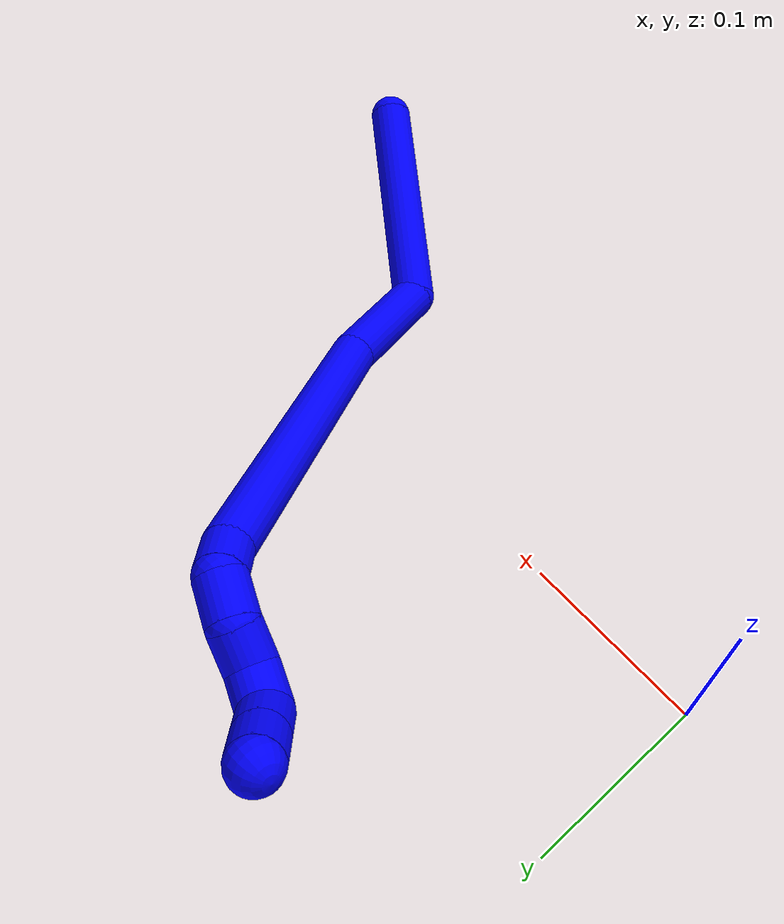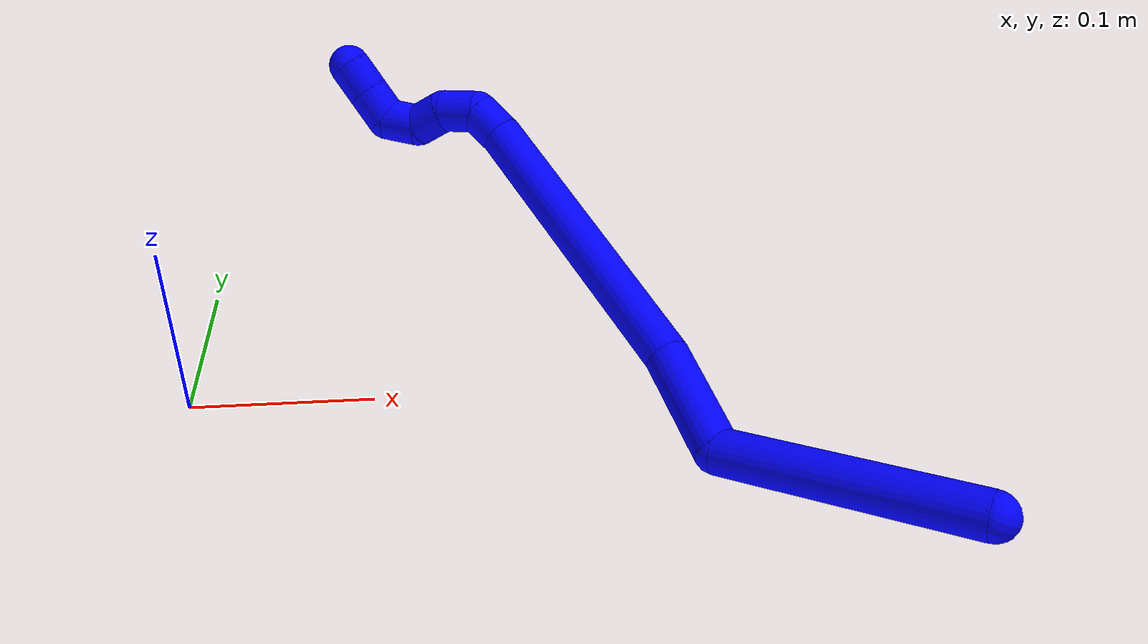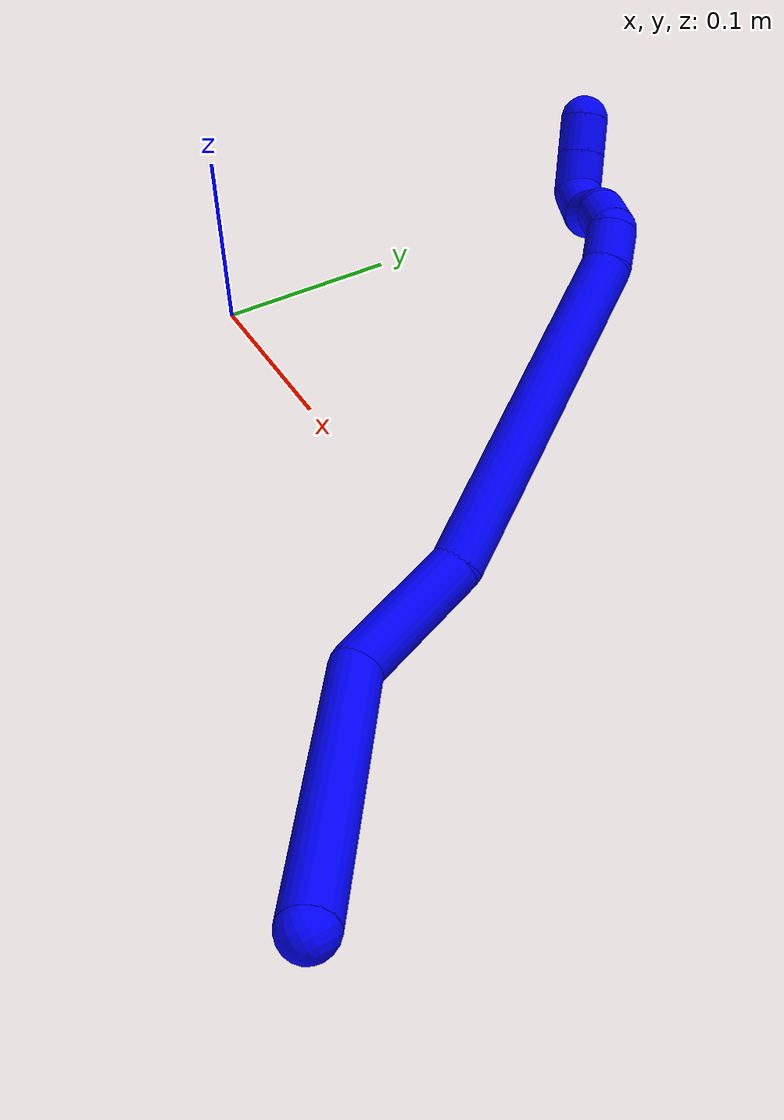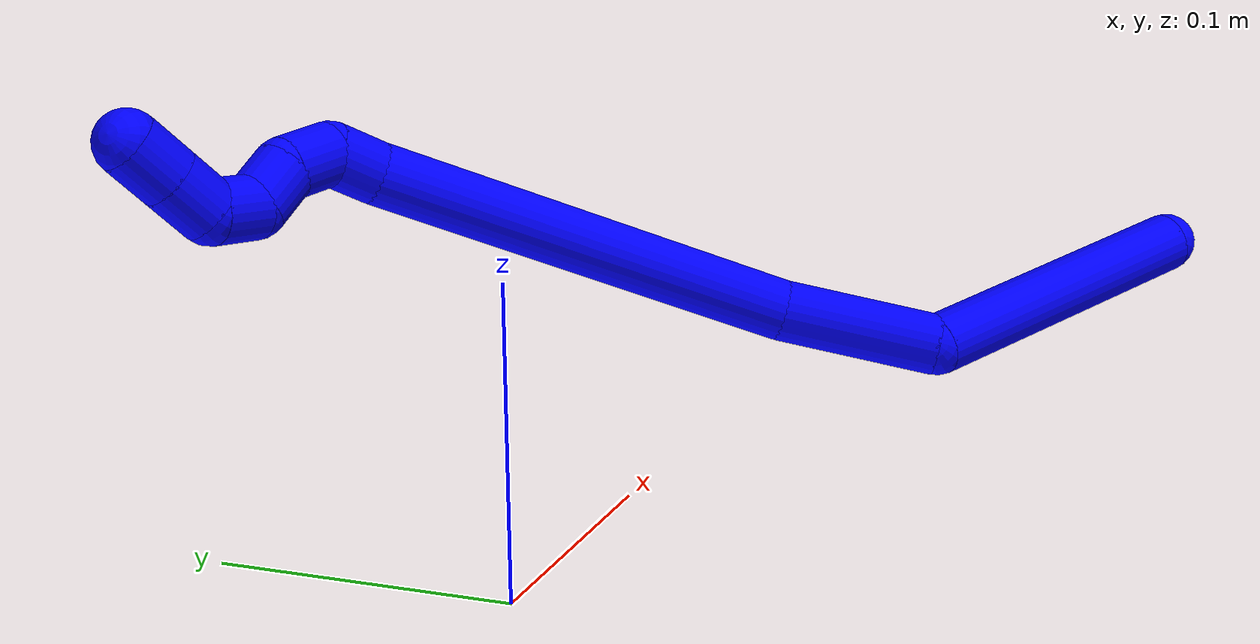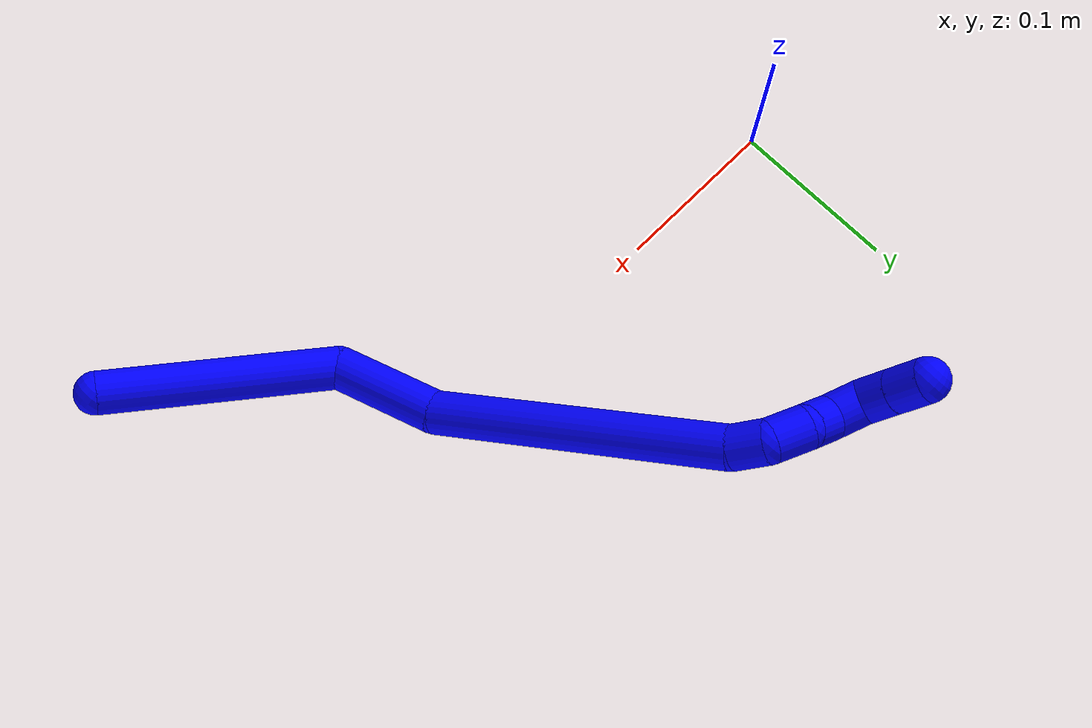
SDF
<sdf version="1.7">
 <world name="default">
  <plugin name="TubeGeneratorPlugin" filename="libtube_generator_plugin.so"/>
  <model name="photoneo_s_sensor">
   <static>1</static>
   <pose>0 0 2 1.57079 1.57079 3.14159</pose>
   <link name="link">
    <inertial><mass>0.1</mass></inertial>
    <sensor name="sensor" type="depth">
     <update_rate>30</update_rate>
     <camera>
      <horizontal_fov>1.22</horizontal_fov>
      <image><width>1920</width><height>1200</height><format>B8G8R8</format></image>
      <clip><near>0.1</near><far>4</far></clip>
      <depth_camera><output>points</output></depth_camera>
     </camera>
     <plugin name="camera_plugin" filename="libgazebo_ros_depth_camera.so">
      <baseline>0.2</baseline>
      <alwaysOn>1</alwaysOn>
      <updateRate>0.0</updateRate>
      <cameraName>camera_ir</cameraName>
      <imageTopicName>/camera/color/image_raw</imageTopicName>
      <cameraInfoTopicName>/camera/color/camera_info</cameraInfoTopicName>
      <depthImageTopicName>/camera/depth/image_raw</depthImageTopicName>
      <depthImageCameraInfoTopicName>/camera/depth/camera_info</depthImageCameraInfoTopicName>
      <pointCloudTopicName>/camera/depth/points</pointCloudTopicName>
      <frameName>fr_optical</frameName>
      <pointCloudCutoff>0.1</pointCloudCutoff>
      <pointCloudCutoffMax>2.0</pointCloudCutoffMax>
      <distortionK1>0</distortionK1>
      <distortionK2>0</distortionK2>
      <distortionK3>0</distortionK3>
      <distortionT1>0</distortionT1>
      <distortionT2>0</distortionT2>
      <CxPrime>0</CxPrime>
      <Cx>0</Cx>
      <Cy>0</Cy>
      <focalLength>0</focalLength>
      <hackBaseline>0</hackBaseline>
     </plugin>
    </sensor>
   </link>
  </model>
  <gravity>0 0 -9.8</gravity>
  <magnetic_field>6e-06 2.3e-05 -4.2e-05</magnetic_field>
  <atmosphere type="adiabatic"/>
  <physics name="default_physics" default="0" type="ode">
   <max_step_size>0.003</max_step_size>
   <real_time_factor>1</real_time_factor>
   <real_time_update_rate>1000</real_time_update_rate>
   <max_contacts>10000</max_contacts>
   <ode>
    <solver>
     <type>quick</type>
     <iters>100</iters>
     <sor>1.3</sor>
     <use_dynamic_moi_rescaling>0</use_dynamic_moi_rescaling>
    </solver>
    <constraints>
     <contact_max_correcting_vel>0</contact_max_correcting_vel>
     <contact_surface_layer>0.001</contact_surface_layer>
     <cfm>0</cfm>
     <erp>0.2</erp>
    </constraints>
   </ode>
  </physics>
  <scene><ambient>0.4 0.4 0.4 1</ambient><background>0.7 0.7 0.7 1</background><shadows>0</shadows></scene>
  <audio><device>default</device></audio>
  <spherical_coordinates>
   <surface_model>EARTH_WGS84</surface_model>
   <latitude_deg>0</latitude_deg>
   <longitude_deg>0</longitude_deg>
   <elevation>0</elevation>
   <heading_deg>0</heading_deg>
  </spherical_coordinates>
  <model name="bin">
   <static>1</static>
   <link name="bottom">
    <collision name="collision-bottom">
     <pose>0 0 -0.01 0 -0 0</pose>
     <geometry><box><size>0.8 0.6 0.02</size></box></geometry>
     <surface>
      <friction><ode><mu>100</mu><mu2>100</mu2></ode></friction>
      <contact><collide_bitmask>65535</collide_bitmask></contact>
     </surface>
    </collision>
   </link>
   <link name="west_wall">
    <collision name="collision-west_wall">
     <pose>-0.41 0 0.1 0 -0 0</pose>
     <geometry><box><size>0.02 0.6 0.2</size></box></geometry>
     <surface>
      <friction><ode><mu>100</mu><mu2>100</mu2></ode></friction>
      <contact><collide_bitmask>65535</collide_bitmask></contact>
     </surface>
    </collision>
   </link>
   <link name="east_wall">
    <collision name="collision-east_wall">
     <pose>0.41 0 0.1 0 -0 0</pose>
     <geometry><box><size>0.02 0.6 0.2</size></box></geometry>
     <surface>
      <friction><ode><mu>100</mu><mu2>100</mu2></ode></friction>
      <contact><collide_bitmask>65535</collide_bitmask></contact>
     </surface>
    </collision>
   </link>
   <link name="south_wall">
    <collision name="collision-south_wall">
     <pose>0 -0.31 0.1 0 -0 0</pose>
     <geometry><box><size>0.8 0.02 0.2</size></box></geometry>
     <surface>
      <friction><ode><mu>100</mu><mu2>100</mu2></ode></friction>
      <contact><collide_bitmask>65535</collide_bitmask></contact>
     </surface>
    </collision>
   </link>
   <link name="north_wall">
    <collision name="collision-north_wall">
     <pose>0 0.31 0.1 0 -0 0</pose>
     <geometry><box><size>0.8 0.02 0.2</size></box></geometry>
     <surface>
      <friction><ode><mu>100</mu><mu2>100</mu2></ode></friction>
      <contact><collide_bitmask>65535</collide_bitmask></contact>
     </surface>
    </collision>
   </link>
  </model>
  <model name="1">
   <static>0</static>
   <link name="1">
    <collision name="collision-cylinder-e_1_1_4">
     <pose>-0.002741 0.051052 -0.045888 -2.30297 -0.039908 0.089484</pose>
     <geometry><cylinder><radius>0.0125</radius><length>0.137398</length></cylinder></geometry>
     <surface>
      <friction><ode><mu>1.16</mu><mu2>1.16</mu2><slip1>0</slip1><slip2>0</slip2></ode></friction>
      <contact><ode><kp>1e+06</kp><kd>1</kd><max_vel>0</max_vel><min_depth>0.001</min_depth></ode></contact>
     </surface>
    </collision>
    <visual name="visual-cylinder-e_1_1_4">
     <pose>-0.002741 0.051052 -0.045888 -2.30297 -0.039908 0.089484</pose>
     <geometry><cylinder><radius>0.0125</radius><length>0.137398</length></cylinder></geometry>
     <material><ambient>0 0 1 1</ambient></material>
    </visual>
    <collision name="collision-cylinder-e_2_4_5">
     <pose>-0.028929 0.121974 -0.102942 -2.08277 -0.799556 1.25084</pose>
     <geometry><cylinder><radius>0.0125</radius><length>0.0654</length></cylinder></geometry>
     <surface>
      <friction><ode><mu>1.16</mu><mu2>1.16</mu2><slip1>0</slip1><slip2>0</slip2></ode></friction>
      <contact><ode><kp>1e+06</kp><kd>1</kd><max_vel>0</max_vel><min_depth>0.001</min_depth></ode></contact>
     </surface>
    </collision>
    <visual name="visual-cylinder-e_2_4_5">
     <pose>-0.028929 0.121974 -0.102942 -2.08277 -0.799556 1.25084</pose>
     <geometry><cylinder><radius>0.0125</radius><length>0.0654</length></cylinder></geometry>
     <material><ambient>0 0 1 1</ambient></material>
    </visual>
    <collision name="collision-cylinder-e_3_5_6">
     <pose>-0.109169 0.182251 -0.166048 -2.48044 -0.71201 1.65097</pose>
     <geometry><cylinder><radius>0.0125</radius><length>0.173849</length></cylinder></geometry>
     <surface>
      <friction><ode><mu>1.16</mu><mu2>1.16</mu2><slip1>0</slip1><slip2>0</slip2></ode></friction>
      <contact><ode><kp>1e+06</kp><kd>1</kd><max_vel>0</max_vel><min_depth>0.001</min_depth></ode></contact>
     </surface>
    </collision>
    <visual name="visual-cylinder-e_3_5_6">
     <pose>-0.109169 0.182251 -0.166048 -2.48044 -0.71201 1.65097</pose>
     <geometry><cylinder><radius>0.0125</radius><length>0.173849</length></cylinder></geometry>
     <material><ambient>0 0 1 1</ambient></material>
    </visual>
    <collision name="collision-cylinder-e_4_6_7">
     <pose>-0.171384 0.225926 -0.226182 -2.76212 -0.551104 1.9483</pose>
     <geometry><cylinder><radius>0.0125</radius><length>0.020712</length></cylinder></geometry>
     <surface>
      <friction><ode><mu>1.16</mu><mu2>1.16</mu2><slip1>0</slip1><slip2>0</slip2></ode></friction>
      <contact><ode><kp>1e+06</kp><kd>1</kd><max_vel>0</max_vel><min_depth>0.001</min_depth></ode></contact>
     </surface>
    </collision>
    <visual name="visual-cylinder-e_4_6_7">
     <pose>-0.171384 0.225926 -0.226182 -2.76212 -0.551104 1.9483</pose>
     <geometry><cylinder><radius>0.0125</radius><length>0.020712</length></cylinder></geometry>
     <material><ambient>0 0 1 1</ambient></material>
    </visual>
    <collision name="collision-cylinder-e_5_7_8">
     <pose>-0.17574 0.235852 -0.243071 -2.48802 0.097134 -0.284866</pose>
     <geometry><cylinder><radius>0.0125</radius><length>0.022004</length></cylinder></geometry>
     <surface>
      <friction><ode><mu>1.16</mu><mu2>1.16</mu2><slip1>0</slip1><slip2>0</slip2></ode></friction>
      <contact><ode><kp>1e+06</kp><kd>1</kd><max_vel>0</max_vel><min_depth>0.001</min_depth></ode></contact>
     </surface>
    </collision>
    <visual name="visual-cylinder-e_5_7_8">
     <pose>-0.17574 0.235852 -0.243071 -2.48802 0.097134 -0.284866</pose>
     <geometry><cylinder><radius>0.0125</radius><length>0.022004</length></cylinder></geometry>
     <material><ambient>0 0 1 1</ambient></material>
    </visual>
    <collision name="collision-cylinder-e_6_8_9">
     <pose>-0.16999 0.249902 -0.256853 -2.17369 0.481007 -0.873102</pose>
     <geometry><cylinder><radius>0.0125</radius><length>0.020246</length></cylinder></geometry>
     <surface>
      <friction><ode><mu>1.16</mu><mu2>1.16</mu2><slip1>0</slip1><slip2>0</slip2></ode></friction>
      <contact><ode><kp>1e+06</kp><kd>1</kd><max_vel>0</max_vel><min_depth>0.001</min_depth></ode></contact>
     </surface>
    </collision>
    <visual name="visual-cylinder-e_6_8_9">
     <pose>-0.16999 0.249902 -0.256853 -2.17369 0.481007 -0.873102</pose>
     <geometry><cylinder><radius>0.0125</radius><length>0.020246</length></cylinder></geometry>
     <material><ambient>0 0 1 1</ambient></material>
    </visual>
    <collision name="collision-cylinder-e_7_9_10">
     <pose>-0.165346 0.262028 -0.270966 -2.65851 -0.003914 0.015888</pose>
     <geometry><cylinder><radius>0.0125</radius><length>0.020381</length></cylinder></geometry>
     <surface>
      <friction><ode><mu>1.16</mu><mu2>1.16</mu2><slip1>0</slip1><slip2>0</slip2></ode></friction>
      <contact><ode><kp>1e+06</kp><kd>1</kd><max_vel>0</max_vel><min_depth>0.001</min_depth></ode></contact>
     </surface>
    </collision>
    <visual name="visual-cylinder-e_7_9_10">
     <pose>-0.165346 0.262028 -0.270966 -2.65851 -0.003914 0.015888</pose>
     <geometry><cylinder><radius>0.0125</radius><length>0.020381</length></cylinder></geometry>
     <material><ambient>0 0 1 1</ambient></material>
    </visual>
    <collision name="collision-cylinder-e_8_10_11">
     <pose>-0.171468 0.266937 -0.287929 -3.11953 -0.653641 3.07653</pose>
     <geometry><cylinder><radius>0.0125</radius><length>0.020006</length></cylinder></geometry>
     <surface>
      <friction><ode><mu>1.16</mu><mu2>1.16</mu2><slip1>0</slip1><slip2>0</slip2></ode></friction>
      <contact><ode><kp>1e+06</kp><kd>1</kd><max_vel>0</max_vel><min_depth>0.001</min_depth></ode></contact>
     </surface>
    </collision>
    <visual name="visual-cylinder-e_8_10_11">
     <pose>-0.171468 0.266937 -0.287929 -3.11953 -0.653641 3.07653</pose>
     <geometry><cylinder><radius>0.0125</radius><length>0.020006</length></cylinder></geometry>
     <material><ambient>0 0 1 1</ambient></material>
    </visual>
    <collision name="collision-cylinder-e_9_11_2">
     <pose>-0.183633 0.267284 -0.303808 -3.11985 -0.653662 3.07747</pose>
     <geometry><cylinder><radius>0.0125</radius><length>0.020006</length></cylinder></geometry>
     <surface>
      <friction><ode><mu>1.16</mu><mu2>1.16</mu2><slip1>0</slip1><slip2>0</slip2></ode></friction>
      <contact><ode><kp>1e+06</kp><kd>1</kd><max_vel>0</max_vel><min_depth>0.001</min_depth></ode></contact>
     </surface>
    </collision>
    <visual name="visual-cylinder-e_9_11_2">
     <pose>-0.183633 0.267284 -0.303808 -3.11985 -0.653662 3.07747</pose>
     <geometry><cylinder><radius>0.0125</radius><length>0.020006</length></cylinder></geometry>
     <material><ambient>0 0 1 1</ambient></material>
    </visual>
    <collision name="collision-sphere-2">
     <pose>-0.189716 0.267457 -0.311747 0 -0 0</pose>
     <geometry><sphere><radius>0.0125</radius></sphere></geometry>
     <surface>
      <friction><ode><mu>1.16</mu><mu2>1.16</mu2><slip1>0</slip1><slip2>0</slip2></ode></friction>
      <contact><ode><kp>1e+06</kp><kd>1</kd><max_vel>0</max_vel><min_depth>0.001</min_depth></ode></contact>
     </surface>
    </collision>
    <visual name="visual-sphere-2">
     <pose>-0.189716 0.267457 -0.311747 0 -0 0</pose>
     <geometry><sphere><radius>0.0125</radius></sphere></geometry>
     <material><ambient>0 0 1 1</ambient></material>
    </visual>
    <collision name="collision-sphere-11">
     <pose>-0.177551 0.267112 -0.295868 0 -0 0</pose>
     <geometry><sphere><radius>0.0125</radius></sphere></geometry>
     <surface>
      <friction><ode><mu>1.16</mu><mu2>1.16</mu2><slip1>0</slip1><slip2>0</slip2></ode></friction>
      <contact><ode><kp>1e+06</kp><kd>1</kd><max_vel>0</max_vel><min_depth>0.001</min_depth></ode></contact>
     </surface>
    </collision>
    <visual name="visual-sphere-11">
     <pose>-0.177551 0.267112 -0.295868 0 -0 0</pose>
     <geometry><sphere><radius>0.0125</radius></sphere></geometry>
     <material><ambient>0 0 1 1</ambient></material>
    </visual>
    <collision name="collision-sphere-10">
     <pose>-0.165386 0.266761 -0.27999 0 -0 0</pose>
     <geometry><sphere><radius>0.0125</radius></sphere></geometry>
     <surface>
      <friction><ode><mu>1.16</mu><mu2>1.16</mu2><slip1>0</slip1><slip2>0</slip2></ode></friction>
      <contact><ode><kp>1e+06</kp><kd>1</kd><max_vel>0</max_vel><min_depth>0.001</min_depth></ode></contact>
     </surface>
    </collision>
    <visual name="visual-sphere-10">
     <pose>-0.165386 0.266761 -0.27999 0 -0 0</pose>
     <geometry><sphere><radius>0.0125</radius></sphere></geometry>
     <material><ambient>0 0 1 1</ambient></material>
    </visual>
    <collision name="collision-sphere-9">
     <pose>-0.165306 0.257294 -0.261942 0 -0 0</pose>
     <geometry><sphere><radius>0.0125</radius></sphere></geometry>
     <surface>
      <friction><ode><mu>1.16</mu><mu2>1.16</mu2><slip1>0</slip1><slip2>0</slip2></ode></friction>
      <contact><ode><kp>1e+06</kp><kd>1</kd><max_vel>0</max_vel><min_depth>0.001</min_depth></ode></contact>
     </surface>
    </collision>
    <visual name="visual-sphere-9">
     <pose>-0.165306 0.257294 -0.261942 0 -0 0</pose>
     <geometry><sphere><radius>0.0125</radius></sphere></geometry>
     <material><ambient>0 0 1 1</ambient></material>
    </visual>
    <collision name="collision-sphere-4">
     <pose>-0.005482 0.102104 -0.091776 0 -0 0</pose>
     <geometry><sphere><radius>0.0125</radius></sphere></geometry>
     <surface>
      <friction><ode><mu>1.16</mu><mu2>1.16</mu2><slip1>0</slip1><slip2>0</slip2></ode></friction>
      <contact><ode><kp>1e+06</kp><kd>1</kd><max_vel>0</max_vel><min_depth>0.001</min_depth></ode></contact>
     </surface>
    </collision>
    <visual name="visual-sphere-4">
     <pose>-0.005482 0.102104 -0.091776 0 -0 0</pose>
     <geometry><sphere><radius>0.0125</radius></sphere></geometry>
     <material><ambient>0 0 1 1</ambient></material>
    </visual>
    <collision name="collision-sphere-1">
     <geometry><sphere><radius>0.0125</radius></sphere></geometry>
     <surface>
      <friction><ode><mu>1.16</mu><mu2>1.16</mu2><slip1>0</slip1><slip2>0</slip2></ode></friction>
      <contact><ode><kp>1e+06</kp><kd>1</kd><max_vel>0</max_vel><min_depth>0.001</min_depth></ode></contact>
     </surface>
    </collision>
    <visual name="visual-sphere-1">
     <geometry><sphere><radius>0.0125</radius></sphere></geometry>
     <material><ambient>0 0 1 1</ambient></material>
    </visual>
    <collision name="collision-sphere-8">
     <pose>-0.174673 0.24251 -0.251764 0 -0 0</pose>
     <geometry><sphere><radius>0.0125</radius></sphere></geometry>
     <surface>
      <friction><ode><mu>1.16</mu><mu2>1.16</mu2><slip1>0</slip1><slip2>0</slip2></ode></friction>
      <contact><ode><kp>1e+06</kp><kd>1</kd><max_vel>0</max_vel><min_depth>0.001</min_depth></ode></contact>
     </surface>
    </collision>
    <visual name="visual-sphere-8">
     <pose>-0.174673 0.24251 -0.251764 0 -0 0</pose>
     <geometry><sphere><radius>0.0125</radius></sphere></geometry>
     <material><ambient>0 0 1 1</ambient></material>
    </visual>
    <collision name="collision-sphere-5">
     <pose>-0.052376 0.141844 -0.114108 0 -0 0</pose>
     <geometry><sphere><radius>0.0125</radius></sphere></geometry>
     <surface>
      <friction><ode><mu>1.16</mu><mu2>1.16</mu2><slip1>0</slip1><slip2>0</slip2></ode></friction>
      <contact><ode><kp>1e+06</kp><kd>1</kd><max_vel>0</max_vel><min_depth>0.001</min_depth></ode></contact>
     </surface>
    </collision>
    <visual name="visual-sphere-5">
     <pose>-0.052376 0.141844 -0.114108 0 -0 0</pose>
     <geometry><sphere><radius>0.0125</radius></sphere></geometry>
     <material><ambient>0 0 1 1</ambient></material>
    </visual>
    <collision name="collision-sphere-6">
     <pose>-0.165962 0.222658 -0.217987 0 -0 0</pose>
     <geometry><sphere><radius>0.0125</radius></sphere></geometry>
     <surface>
      <friction><ode><mu>1.16</mu><mu2>1.16</mu2><slip1>0</slip1><slip2>0</slip2></ode></friction>
      <contact><ode><kp>1e+06</kp><kd>1</kd><max_vel>0</max_vel><min_depth>0.001</min_depth></ode></contact>
     </surface>
    </collision>
    <visual name="visual-sphere-6">
     <pose>-0.165962 0.222658 -0.217987 0 -0 0</pose>
     <geometry><sphere><radius>0.0125</radius></sphere></geometry>
     <material><ambient>0 0 1 1</ambient></material>
    </visual>
    <collision name="collision-sphere-7">
     <pose>-0.176807 0.229194 -0.234377 0 -0 0</pose>
     <geometry><sphere><radius>0.0125</radius></sphere></geometry>
     <surface>
      <friction><ode><mu>1.16</mu><mu2>1.16</mu2><slip1>0</slip1><slip2>0</slip2></ode></friction>
      <contact><ode><kp>1e+06</kp><kd>1</kd><max_vel>0</max_vel><min_depth>0.001</min_depth></ode></contact>
     </surface>
    </collision>
    <visual name="visual-sphere-7">
     <pose>-0.176807 0.229194 -0.234377 0 -0 0</pose>
     <geometry><sphere><radius>0.0125</radius></sphere></geometry>
     <material><ambient>0 0 1 1</ambient></material>
    </visual>
    <inertial>
     <pose>-0.085159 0.155264 -0.148997 0 -0 0</pose>
     <mass>0.5</mass>
     <inertia>
      <ixx>0.000558</ixx>
      <ixy>0</ixy>
      <ixz>0</ixz>
      <iyy>0.000465</iyy>
      <iyz>0</iyz>
      <izz>-9.5e-05</izz>
     </inertia>
    </inertial>
   </link>
   <pose>0.388502 -0.145083 0.036029 -2.14101 0.700215 -1.97545</pose>
  </model>
 </world>
</sdf>
